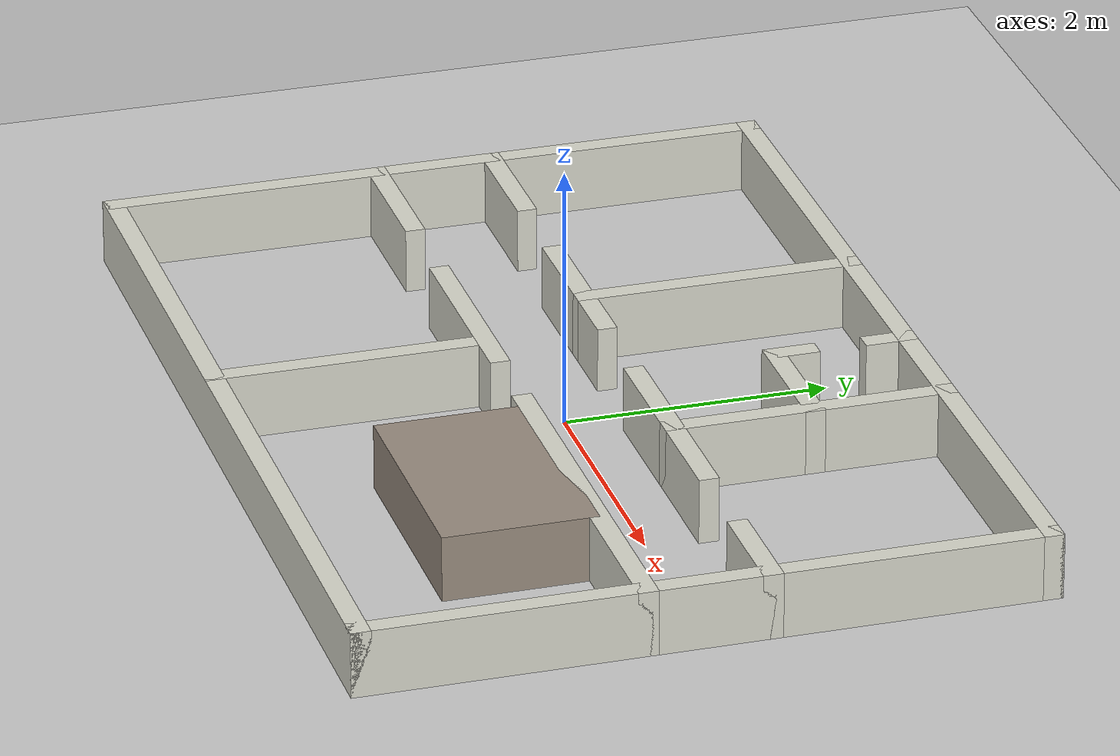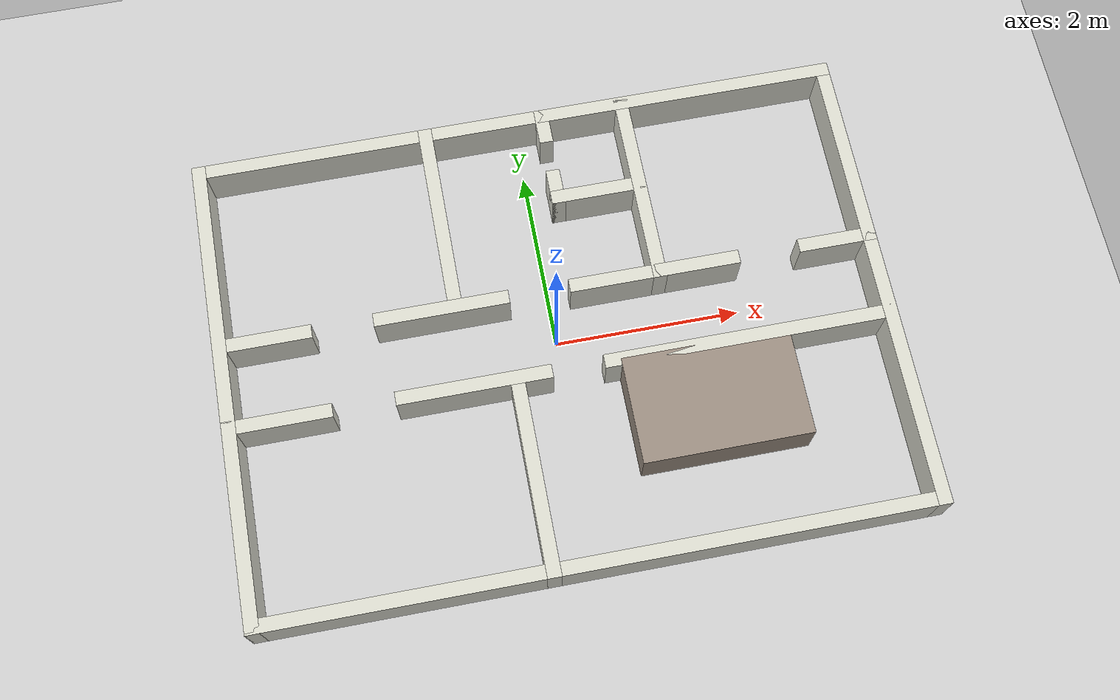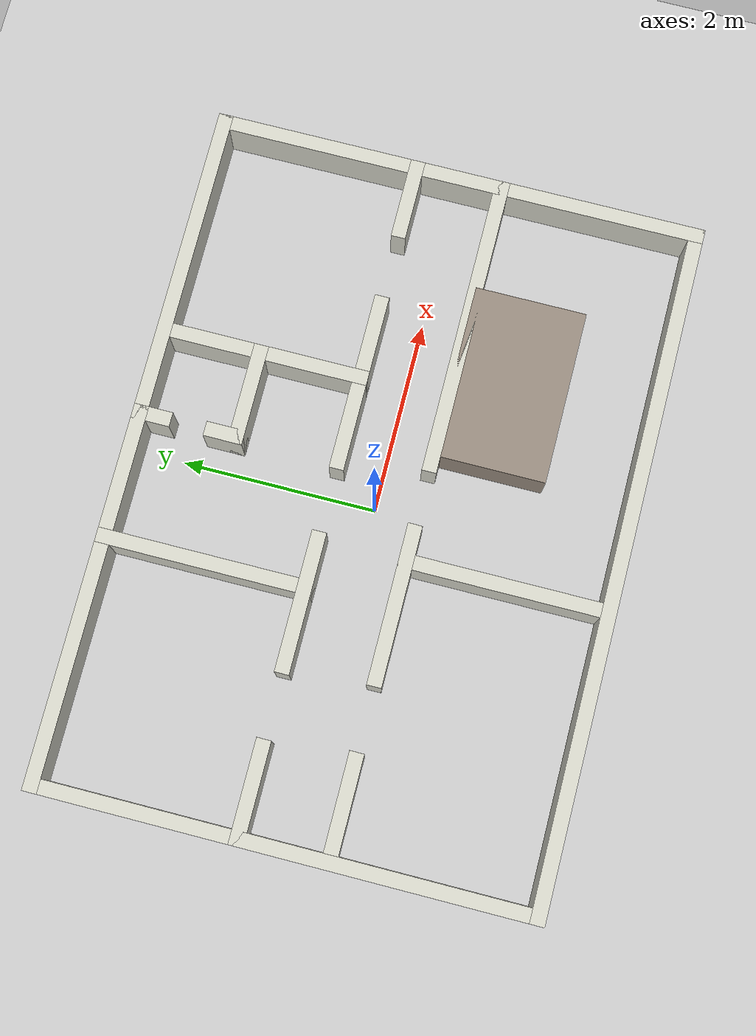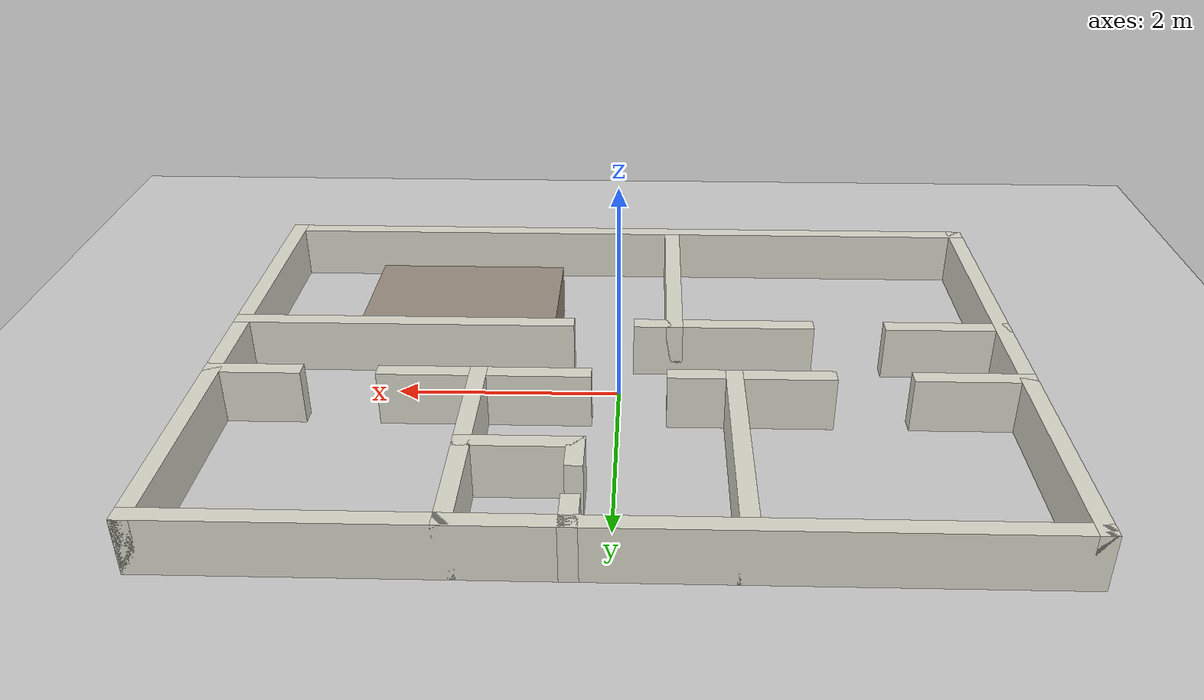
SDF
<?xml version="1.0"?>
<sdf version="1.6">
  <world name="house_full">
    <include><uri>model://ground_plane</uri></include>
    <include><uri>model://sun</uri></include>

    <model name="wall_0">
      <static>true</static>
      <pose>0.0 -2.5 0.25 0 0 0.0</pose>
      <link name="link">
        <collision name="collision">
          <geometry><box><size>7.15 0.15 0.5</size></box></geometry>
        </collision>
        <visual name="visual">
          <geometry><box><size>7.15 0.15 0.5</size></box></geometry>
          <material>
            <ambient>0.85 0.85 0.8 1</ambient>
            <diffuse>0.85 0.85 0.8 1</diffuse>
          </material>
        </visual>
      </link>
    </model>
    <model name="wall_1">
      <static>true</static>
      <pose>0.0 2.5 0.25 0 0 0.0</pose>
      <link name="link">
        <collision name="collision">
          <geometry><box><size>7.15 0.15 0.5</size></box></geometry>
        </collision>
        <visual name="visual">
          <geometry><box><size>7.15 0.15 0.5</size></box></geometry>
          <material>
            <ambient>0.85 0.85 0.8 1</ambient>
            <diffuse>0.85 0.85 0.8 1</diffuse>
          </material>
        </visual>
      </link>
    </model>
    <model name="wall_2">
      <static>true</static>
      <pose>-3.5 0.0 0.25 0 0 1.5707963267948966</pose>
      <link name="link">
        <collision name="collision">
          <geometry><box><size>5.15 0.15 0.5</size></box></geometry>
        </collision>
        <visual name="visual">
          <geometry><box><size>5.15 0.15 0.5</size></box></geometry>
          <material>
            <ambient>0.85 0.85 0.8 1</ambient>
            <diffuse>0.85 0.85 0.8 1</diffuse>
          </material>
        </visual>
      </link>
    </model>
    <model name="wall_3">
      <static>true</static>
      <pose>3.5 0.0 0.25 0 0 1.5707963267948966</pose>
      <link name="link">
        <collision name="collision">
          <geometry><box><size>5.15 0.15 0.5</size></box></geometry>
        </collision>
        <visual name="visual">
          <geometry><box><size>5.15 0.15 0.5</size></box></geometry>
          <material>
            <ambient>0.85 0.85 0.8 1</ambient>
            <diffuse>0.85 0.85 0.8 1</diffuse>
          </material>
        </visual>
      </link>
    </model>
    <model name="wall_4">
      <static>true</static>
      <pose>-3.05 0.45 0.25 0 0 0.0</pose>
      <link name="link">
        <collision name="collision">
          <geometry><box><size>1.0499999999999998 0.15 0.5</size></box></geometry>
        </collision>
        <visual name="visual">
          <geometry><box><size>1.0499999999999998 0.15 0.5</size></box></geometry>
          <material>
            <ambient>0.85 0.85 0.8 1</ambient>
            <diffuse>0.85 0.85 0.8 1</diffuse>
          </material>
        </visual>
      </link>
    </model>
    <model name="wall_5">
      <static>true</static>
      <pose>-1.15 0.45 0.25 0 0 0.0</pose>
      <link name="link">
        <collision name="collision">
          <geometry><box><size>1.45 0.15 0.5</size></box></geometry>
        </collision>
        <visual name="visual">
          <geometry><box><size>1.45 0.15 0.5</size></box></geometry>
          <material>
            <ambient>0.85 0.85 0.8 1</ambient>
            <diffuse>0.85 0.85 0.8 1</diffuse>
          </material>
        </visual>
      </link>
    </model>
    <model name="wall_6">
      <static>true</static>
      <pose>1.15 0.45 0.25 0 0 0.0</pose>
      <link name="link">
        <collision name="collision">
          <geometry><box><size>1.8499999999999999 0.15 0.5</size></box></geometry>
        </collision>
        <visual name="visual">
          <geometry><box><size>1.8499999999999999 0.15 0.5</size></box></geometry>
          <material>
            <ambient>0.85 0.85 0.8 1</ambient>
            <diffuse>0.85 0.85 0.8 1</diffuse>
          </material>
        </visual>
      </link>
    </model>
    <model name="wall_7">
      <static>true</static>
      <pose>3.15 0.45 0.25 0 0 0.0</pose>
      <link name="link">
        <collision name="collision">
          <geometry><box><size>0.8500000000000002 0.15 0.5</size></box></geometry>
        </collision>
        <visual name="visual">
          <geometry><box><size>0.8500000000000002 0.15 0.5</size></box></geometry>
          <material>
            <ambient>0.85 0.85 0.8 1</ambient>
            <diffuse>0.85 0.85 0.8 1</diffuse>
          </material>
        </visual>
      </link>
    </model>
    <model name="wall_8">
      <static>true</static>
      <pose>-3.0 -0.45 0.25 0 0 0.0</pose>
      <link name="link">
        <collision name="collision">
          <geometry><box><size>1.15 0.15 0.5</size></box></geometry>
        </collision>
        <visual name="visual">
          <geometry><box><size>1.15 0.15 0.5</size></box></geometry>
          <material>
            <ambient>0.85 0.85 0.8 1</ambient>
            <diffuse>0.85 0.85 0.8 1</diffuse>
          </material>
        </visual>
      </link>
    </model>
    <model name="wall_9">
      <static>true</static>
      <pose>-0.95 -0.45 0.25 0 0 0.0</pose>
      <link name="link">
        <collision name="collision">
          <geometry><box><size>1.65 0.15 0.5</size></box></geometry>
        </collision>
        <visual name="visual">
          <geometry><box><size>1.65 0.15 0.5</size></box></geometry>
          <material>
            <ambient>0.85 0.85 0.8 1</ambient>
            <diffuse>0.85 0.85 0.8 1</diffuse>
          </material>
        </visual>
      </link>
    </model>
    <model name="wall_10">
      <static>true</static>
      <pose>2.0 -0.45 0.25 0 0 0.0</pose>
      <link name="link">
        <collision name="collision">
          <geometry><box><size>3.15 0.15 0.5</size></box></geometry>
        </collision>
        <visual name="visual">
          <geometry><box><size>3.15 0.15 0.5</size></box></geometry>
          <material>
            <ambient>0.85 0.85 0.8 1</ambient>
            <diffuse>0.85 0.85 0.8 1</diffuse>
          </material>
        </visual>
      </link>
    </model>
    <model name="wall_11">
      <static>true</static>
      <pose>-1.0 1.475 0.25 0 0 1.5707963267948966</pose>
      <link name="link">
        <collision name="collision">
          <geometry><box><size>2.1999999999999997 0.15 0.5</size></box></geometry>
        </collision>
        <visual name="visual">
          <geometry><box><size>2.1999999999999997 0.15 0.5</size></box></geometry>
          <material>
            <ambient>0.85 0.85 0.8 1</ambient>
            <diffuse>0.85 0.85 0.8 1</diffuse>
          </material>
        </visual>
      </link>
    </model>
    <model name="wall_12">
      <static>true</static>
      <pose>1.2 1.475 0.25 0 0 1.5707963267948966</pose>
      <link name="link">
        <collision name="collision">
          <geometry><box><size>2.1999999999999997 0.15 0.5</size></box></geometry>
        </collision>
        <visual name="visual">
          <geometry><box><size>2.1999999999999997 0.15 0.5</size></box></geometry>
          <material>
            <ambient>0.85 0.85 0.8 1</ambient>
            <diffuse>0.85 0.85 0.8 1</diffuse>
          </material>
        </visual>
      </link>
    </model>
    <model name="wall_13">
      <static>true</static>
      <pose>0.3 1.625 0.25 0 0 1.5707963267948966</pose>
      <link name="link">
        <collision name="collision">
          <geometry><box><size>0.4 0.15 0.5</size></box></geometry>
        </collision>
        <visual name="visual">
          <geometry><box><size>0.4 0.15 0.5</size></box></geometry>
          <material>
            <ambient>0.85 0.85 0.8 1</ambient>
            <diffuse>0.85 0.85 0.8 1</diffuse>
          </material>
        </visual>
      </link>
    </model>
    <model name="wall_14">
      <static>true</static>
      <pose>0.3 2.375 0.25 0 0 1.5707963267948966</pose>
      <link name="link">
        <collision name="collision">
          <geometry><box><size>0.4 0.15 0.5</size></box></geometry>
        </collision>
        <visual name="visual">
          <geometry><box><size>0.4 0.15 0.5</size></box></geometry>
          <material>
            <ambient>0.85 0.85 0.8 1</ambient>
            <diffuse>0.85 0.85 0.8 1</diffuse>
          </material>
        </visual>
      </link>
    </model>
    <model name="wall_15">
      <static>true</static>
      <pose>0.75 1.5 0.25 0 0 0.0</pose>
      <link name="link">
        <collision name="collision">
          <geometry><box><size>1.0499999999999998 0.15 0.5</size></box></geometry>
        </collision>
        <visual name="visual">
          <geometry><box><size>1.0499999999999998 0.15 0.5</size></box></geometry>
          <material>
            <ambient>0.85 0.85 0.8 1</ambient>
            <diffuse>0.85 0.85 0.8 1</diffuse>
          </material>
        </visual>
      </link>
    </model>
    <model name="wall_16">
      <static>true</static>
      <pose>-0.5 -1.475 0.25 0 0 1.5707963267948966</pose>
      <link name="link">
        <collision name="collision">
          <geometry><box><size>2.1999999999999997 0.15 0.5</size></box></geometry>
        </collision>
        <visual name="visual">
          <geometry><box><size>2.1999999999999997 0.15 0.5</size></box></geometry>
          <material>
            <ambient>0.85 0.85 0.8 1</ambient>
            <diffuse>0.85 0.85 0.8 1</diffuse>
          </material>
        </visual>
      </link>
    </model>
    <model name="block_0">
      <static>true</static>
      <pose>1.5 -1.0250000000000001 0.25 0 0 0</pose>
      <link name="link">
        <collision name="collision">
          <geometry><box><size>1.7999999999999998 1.1500000000000001 0.5</size></box></geometry>
        </collision>
        <visual name="visual">
          <geometry><box><size>1.7999999999999998 1.1500000000000001 0.5</size></box></geometry>
          <material>
            <ambient>0.6 0.55 0.5 1</ambient>
            <diffuse>0.6 0.55 0.5 1</diffuse>
          </material>
        </visual>
      </link>
    </model>
  </world>
</sdf>
